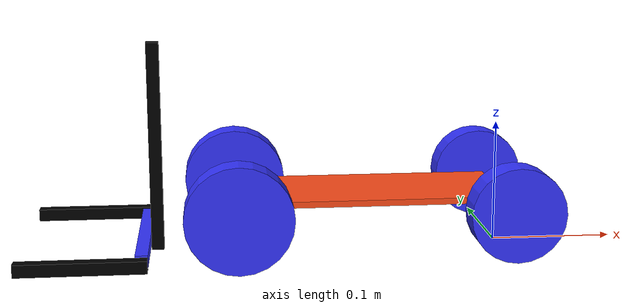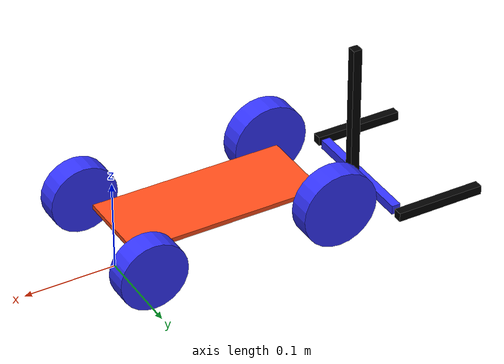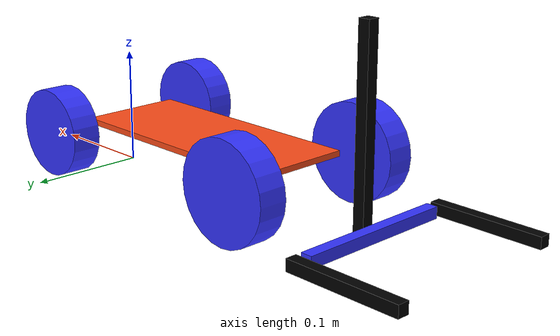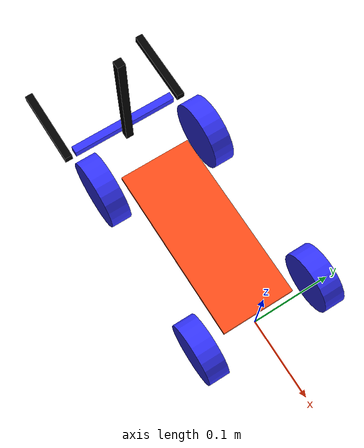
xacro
<?xml version="1.0"?>
<robot xmlns:xacro="http://www.ros.org/wiki/xacro" >

    <xacro:include filename="inertial_macros.xacro"/>

    <xacro:property name="chassis_length" value="0.215"/>
    <xacro:property name="chassis_width" value="0.09"/>
    <xacro:property name="chassis_height" value="0.005"/>
    <xacro:property name="chassis_mass" value="5"/>
    <xacro:property name="front_wheel_radius" value="0.0425"/>
    <xacro:property name="rear_wheel_radius" value="0.0375"/>
    <xacro:property name="wheel_thickness" value="0.025"/>
    <xacro:property name="wheel_mass" value="0.05"/>
    <xacro:property name="rear_wheel_offset_x" value="0.215"/>
    <xacro:property name="rear_wheel_offset_y" value="0.075"/>
    <xacro:property name="front_wheel_offset_x" value="0.0"/>
    <xacro:property name="front_wheel_offset_y" value="0.07"/>
    <xacro:property name="mast_offset_x" value="0.07"/>
    <xacro:property name="mast_height" value="0.170"/>
    <xacro:property name="mast_width" value="0.01"/>
    <xacro:property name="mast_mass" value="0.1"/>
    <xacro:property name="fork_length" value="0.1"/>
    <xacro:property name="fork_width" value="0.01"/>
    <xacro:property name="fork_thickness" value="0.01"/>
    <xacro:property name="fork_mass" value="0.01"/>
    <xacro:property name="carriage_length" value="0.01"/>
    <xacro:property name="carriage_width" value="0.140"/>
    <xacro:property name="carriage_thickness" value="0.01"/>
    <xacro:property name="carriage_mass" value="0.1"/>

    <material name="white">
        <color rgba="1 1 1 1" />
    </material>

    <material name="orange">
        <color rgba="1 0.3 0.1 1"/>
    </material>

    <material name="blue">
        <color rgba="0.2 0.2 1 1"/>
    </material>

    <material name="black">
        <color rgba="0 0 0 1"/>
    </material>

    <material name="red">
        <color rgba="1 0 0 1"/>
    </material>

    <!-- BASE LINK -->

    <link name="base_link">

    </link>

    <!-- BASE_FOOTPRINT LINK -->

    <joint name="base_footprint_joint" type="fixed">
        <parent link="base_link"/>
        <child link="base_footprint"/>
        <origin xyz="0 0 0" rpy="0 0 0"/>
    </joint>

    <link name="base_footprint">
    </link>

    <!-- CHASSIS LINK -->

    <joint name="chassis_joint" type="fixed">
        <parent link="base_link"/>
        <child link="chassis"/>
        <origin xyz="${-rear_wheel_offset_x} 0 ${front_wheel_radius}"/>
    </joint>

    <link name="chassis">
        <visual>
            <origin xyz="${chassis_length/2} 0 ${chassis_height/2}"/>
            <geometry>
                <box size="${chassis_length} ${chassis_width} ${chassis_height}"/>
            </geometry>
            <material name="orange"/>
        </visual>
        <collision>
            <origin xyz="${chassis_length/2} 0 ${chassis_height/2}"/>
            <geometry>
                <box size="${chassis_length} ${chassis_width} ${chassis_height}"/>
            </geometry>
        </collision>
        <xacro:inertial_box mass="0.5" x="${chassis_length}" y="${chassis_width}" z="${chassis_height}">
            <origin xyz="${chassis_length/2} 0 ${chassis_height/2}" rpy="0 0 0"/>
        </xacro:inertial_box>
    </link>

    <gazebo reference="chassis">
        <material>Gazebo/Orange</material>
    </gazebo>

    <!-- RIGHT REAR STEERING JOINT -->

    <joint name="right_rear_steer_joint" type="revolute">
        <parent link="chassis"/>
        <child link="right_rear_wheel_steer"/>
        <origin xyz="${rear_wheel_offset_x} ${rear_wheel_offset_y} 0" rpy="0 0 0"/>
        <axis xyz="0 0 -1"/>
        <limit lower="-0.5" upper="0.5" effort="5.0" velocity="1.0"/>
    </joint>

    <link name="right_rear_wheel_steer">
        <visual>
            <geometry><box size="0.01 0.01 0.01"/></geometry> <!-- dummy link -->
        </visual>
        <collision>
            <geometry><box size="0.01 0.01 0.01"/></geometry>
        </collision>
        <inertial>
            <mass value="0.01"/>
            <origin xyz="0 0 0" rpy="0 0 0"/>
            <inertia ixx="0.0001" ixy="0" ixz="0" iyy="0.0001" iyz="0" izz="0.0001"/>
        </inertial>
    </link>

    <!-- RIGHT REAR WHEEL -->

    <joint name="right_rear_wheel_joint" type="revolute">
        <parent link="right_rear_wheel_steer"/>
        <child link="right_rear_wheel"/>
        <origin xyz="0 0 0" rpy="-${pi/2} 0 0"/>
        <axis xyz="0 0 1"/>
        <limit lower="-1000" upper="1000" effort="0.0" velocity="1000"/> <!-- essentially free rotation -->
        <dynamics damping="0.05" friction="0.0"/> <!-- small damping to stabilize -->
    </joint>

    <link name="right_rear_wheel">
        <visual>
            <geometry>
                <cylinder radius="${rear_wheel_radius}" length="${wheel_thickness}"/>
            </geometry>
            <material name="blue"/>
        </visual>
        <collision>
            <geometry>
                <cylinder radius="${rear_wheel_radius}" length="${wheel_thickness}"/>
            </geometry>
            <surface>
                <friction>
                    <ode>
                        <mu>1.0</mu>       <!-- longitudinal friction -->
                        <mu2>1.0</mu2>     <!-- lateral friction -->
                        <slip1>0.0</slip1>
                        <slip2>0.0</slip2>
                    </ode>
                </friction>
            </surface>
        </collision>
        <xacro:inertial_cylinder mass="${wheel_mass}" length="${wheel_thickness}" radius="${rear_wheel_radius}">
            <origin xyz="0 0 0" rpy="0 0 0"/>
        </xacro:inertial_cylinder>
    </link>

    <!-- LEFT REAR STEERING JOINT -->

    <joint name="left_rear_steer_joint" type="revolute">
        <parent link="chassis"/>
        <child link="left_rear_wheel_steer"/>
        <origin xyz="${rear_wheel_offset_x} ${-rear_wheel_offset_y} 0" rpy="0 0 0"/>
        <axis xyz="0 0 -1"/>
        <limit lower="-0.5" upper="0.5" effort="5.0" velocity="1.0"/>
    </joint>

    <link name="left_rear_wheel_steer">
        <visual>
            <geometry><box size="0.01 0.01 0.01"/></geometry> <!-- dummy link -->
        </visual>
        <collision>
            <geometry><box size="0.01 0.01 0.01"/></geometry>
        </collision>
        <inertial>
            <mass value="0.01"/>
            <origin xyz="0 0 0" rpy="0 0 0"/>
            <inertia ixx="0.0001" ixy="0" ixz="0" iyy="0.0001" iyz="0" izz="0.0001"/>
        </inertial>
    </link>

    <!-- LEFT REAR WHEEL LINK -->

    <joint name="left_rear_wheel_joint" type="revolute">
        <parent link="left_rear_wheel_steer"/>
        <child link="left_rear_wheel"/>
        <origin xyz="0 0 0" rpy="${pi/2} 0 0" />
        <axis xyz="0 0 -1"/>
        <limit lower="-1000" upper="1000" effort="0.0" velocity="1000"/> <!-- essentially free rotation -->
        <dynamics damping="0.05" friction="0.0"/> <!-- small damping to stabilize -->
    </joint>

    <link name="left_rear_wheel">
        <visual>
            <geometry>
                <cylinder radius="${rear_wheel_radius}" length="${wheel_thickness}"/>
            </geometry>
            <material name="blue"/>
        </visual>
        <collision>
            <geometry>
                <cylinder radius="${rear_wheel_radius}" length="${wheel_thickness}"/>
            </geometry>
            <surface>
                <friction>
                    <ode>
                        <mu>1.0</mu>       <!-- longitudinal friction -->
                        <mu2>1.0</mu2>     <!-- lateral friction -->
                        <slip1>0.0</slip1>
                        <slip2>0.0</slip2>
                    </ode>
                </friction>
            </surface>
        </collision>
        <xacro:inertial_cylinder mass="${wheel_mass}" length="${wheel_thickness}" radius="${rear_wheel_radius}">
            <origin xyz="0 0 0" rpy="0 0 0"/>
        </xacro:inertial_cylinder>
    </link>

    <gazebo reference="left_rear_wheel">
        <material>Gazebo/Blue</material>
    </gazebo>

    <!-- right FRONT WHEEL LINK -->

    <joint name="right_front_wheel_joint" type="continuous">
        <parent link="chassis"/>
        <child link="right_front_wheel"/>
        <origin xyz="${front_wheel_offset_x} ${front_wheel_offset_y} 0" rpy="-${pi/2} 0 0" />
        <axis xyz="0 0 -1"/>
    </joint>

    <link name="right_front_wheel">
        <visual>
            <geometry>
                <cylinder radius="${front_wheel_radius}" length="${wheel_thickness}"/>
            </geometry>
            <material name="blue"/>
        </visual>
        <collision>
            <geometry>
                <cylinder radius="${front_wheel_radius}" length="${wheel_thickness}"/>
            </geometry>
        </collision>
        <xacro:inertial_cylinder mass="${wheel_mass}" length="${wheel_thickness}" radius="${front_wheel_radius}">
            <origin xyz="0 0 0" rpy="0 0 0"/>
        </xacro:inertial_cylinder>
    </link>

    <gazebo reference="right_front_wheel">
        <material>Gazebo/Blue</material>
    </gazebo>

    <!-- left FRONT WHEEL LINK -->

    <joint name="left_front_wheel_joint" type="continuous">
        <parent link="chassis"/>
        <child link="left_front_wheel"/>
        <origin xyz="${front_wheel_offset_x} ${-front_wheel_offset_y} 0" rpy="${pi/2} 0 0" />
        <axis xyz="0 0 1"/>
    </joint>

    <link name="left_front_wheel">
        <visual>
            <geometry>
                <cylinder radius="${front_wheel_radius}" length="${wheel_thickness}"/>
            </geometry>
            <material name="blue"/>
        </visual>
        <collision>
            <geometry>
                <cylinder radius="${front_wheel_radius}" length="${wheel_thickness}"/>
            </geometry>
        </collision>
        <xacro:inertial_cylinder mass="${wheel_mass}" length="${wheel_thickness}" radius="${front_wheel_radius}">
            <origin xyz="0 0 0" rpy="0 0 0"/>
        </xacro:inertial_cylinder>
    </link>

    <gazebo reference="left_front_wheel">
        <material>Gazebo/Blue</material>
    </gazebo>

    <!-- MAST LINK -->

    <link name="mast">
        <visual>
            <geometry>
                <box size="${mast_width} ${mast_width} ${mast_height}"/>
            </geometry>
            <material name="black"/>
        </visual>
        <collision>
            <geometry>
                <box size="${mast_width} ${mast_width} ${mast_height}"/>
            </geometry>
        </collision>
        <xacro:inertial_box mass="${mast_mass}" x="${mast_width}" y="${mast_width}" z="${mast_height}">
            <origin xyz="${mast_width/2} 0 ${mast_height/2+0.01}" rpy="0 0 0"/>
        </xacro:inertial_box>
    </link>

    <joint name="mast_joint" type="fixed">
        <parent link="chassis"/>
        <child link="mast"/>
        <origin xyz="${-mast_offset_x+mast_width/2} 0 ${-front_wheel_radius+mast_height/2}" rpy="0 0 0"/>
    </joint>

    <!-- FORK CARRIAGE -->

    <link name="fork_carriage">
        <visual>
            <geometry>
                <box size="${carriage_length} ${carriage_width} ${carriage_thickness}"/>
            </geometry>
            <material name="blue"/>
        </visual>
        <collision>
            <geometry>
                <box size="${carriage_length} ${carriage_width} ${carriage_thickness}"/>
            </geometry>
        </collision>
        <xacro:inertial_box mass="${carriage_mass}" x="${carriage_length}" y="${carriage_width}" z="${carriage_thickness}">
            <origin xyz="${carriage_length/2} 0 ${carriage_thickness/2}" rpy="0 0 0"/>
        </xacro:inertial_box>
    </link>

    <joint name="fork_carriage_joint" type="prismatic">
        <parent link="mast"/>
        <child link="fork_carriage"/>
        <origin xyz="-${mast_width/2 + carriage_length/2} 0 ${-mast_height/2+carriage_thickness}" rpy="0 0 0"/>
        <axis xyz="0 0 1"/>
        <limit lower="0" upper="${mast_height}" effort="10" velocity="0.1"/>
    </joint>

    <!-- right FORK -->

    <link name="fork_right">
        <visual>
            <geometry>
                <box size="${fork_length} ${fork_width} ${fork_thickness}"/>
            </geometry>
            <material name="black"/>
        </visual>
        <collision>
            <geometry>
                <box size="${fork_length} ${fork_width} ${fork_thickness}"/>
            </geometry>
        </collision>
        <xacro:inertial_box mass="${fork_mass}" x="${fork_length}" y="${fork_width}" z="${fork_thickness}">
        <origin xyz="${fork_length/2} 0 0"/>
        </xacro:inertial_box>
    </link>
    <joint name="fork_right_joint" type="fixed">
        <parent link="fork_carriage"/>
        <child link="fork_right"/>
        <origin xyz="${-fork_length/2+carriage_length/2} ${(carriage_width/2+fork_width)} 0" rpy="0 0 ${pi}"/>
    </joint>

    <!-- left FORK -->

    <link name="fork_left">
        <visual>
            <geometry>
                <box size="${fork_length} ${fork_width} ${fork_thickness}"/>
            </geometry>
            <material name="black"/>
        </visual>
        <collision>
            <geometry>
                <box size="${fork_length} ${fork_width} ${fork_thickness}"/>
            </geometry>
        </collision>
        <xacro:inertial_box mass="${fork_mass}" x="${fork_length}" y="${fork_width}" z="${fork_thickness}">
        <origin xyz="${fork_length/2} 0 0"/>
        </xacro:inertial_box>
    </link>
    <joint name="fork_left_joint" type="fixed">
        <parent link="fork_carriage"/>
        <child link="fork_left"/>
        <origin xyz="${-fork_length/2+carriage_length/2} ${-(carriage_width/2+fork_width)} 0" rpy="0 0 ${pi}"/>
    </joint>

</robot>
